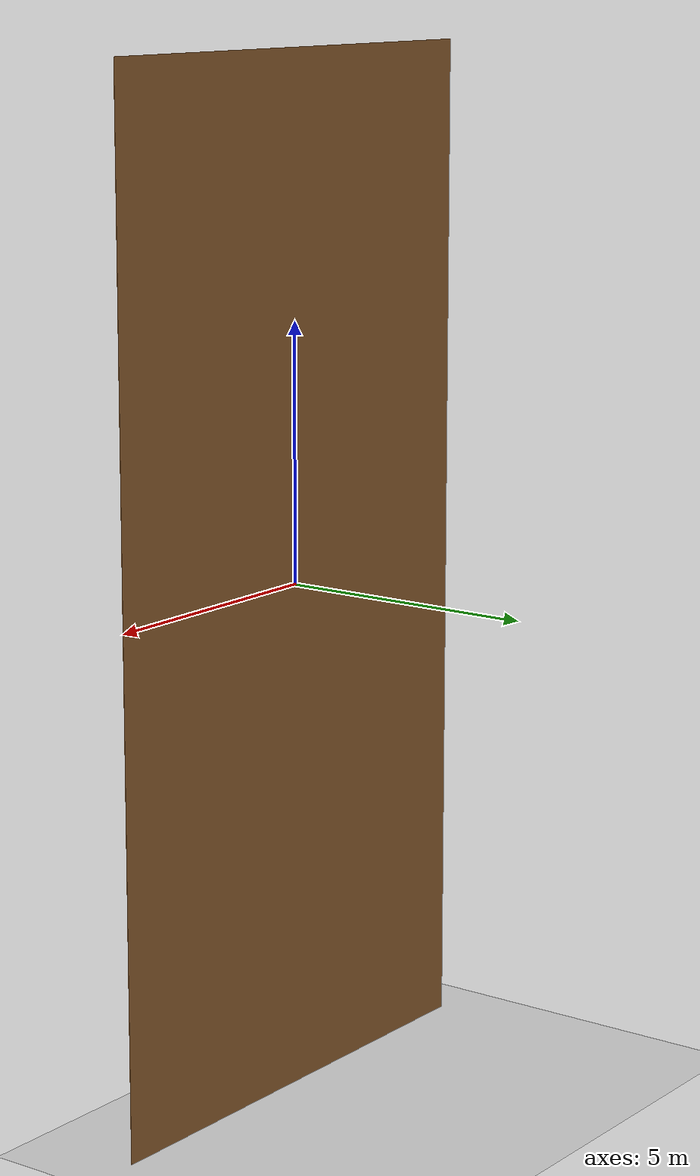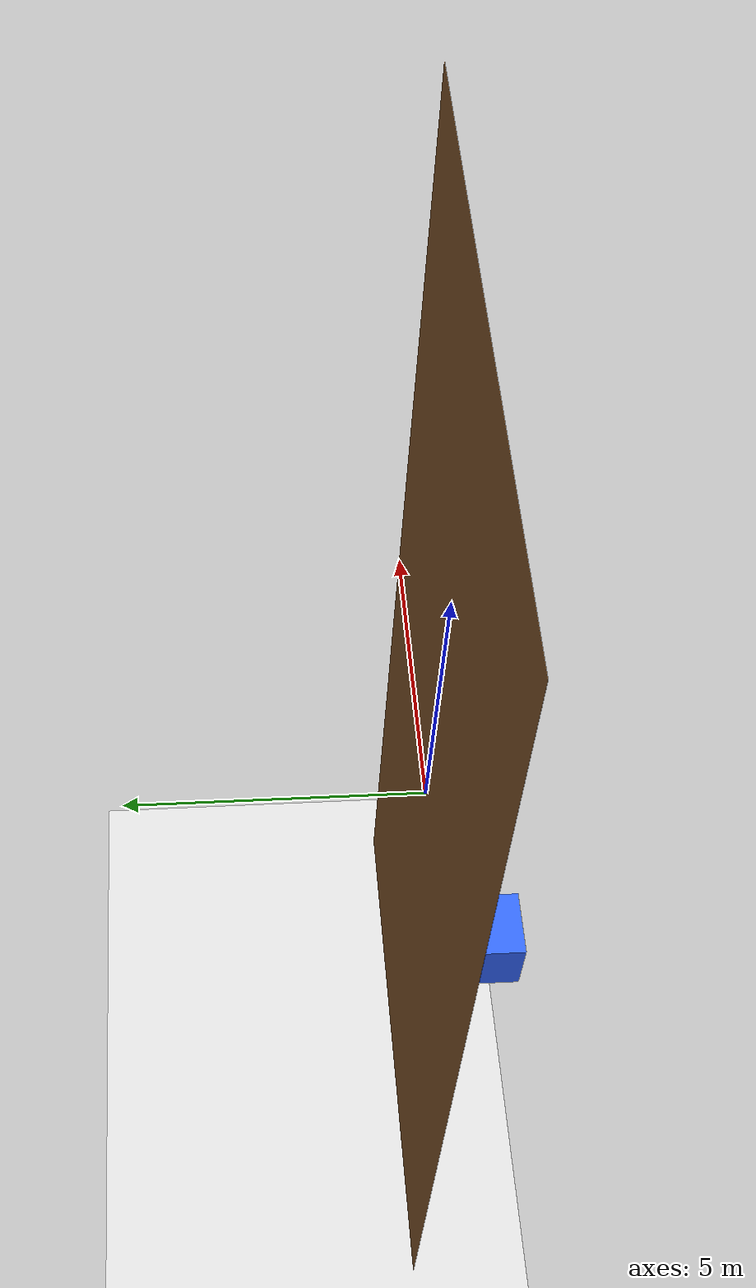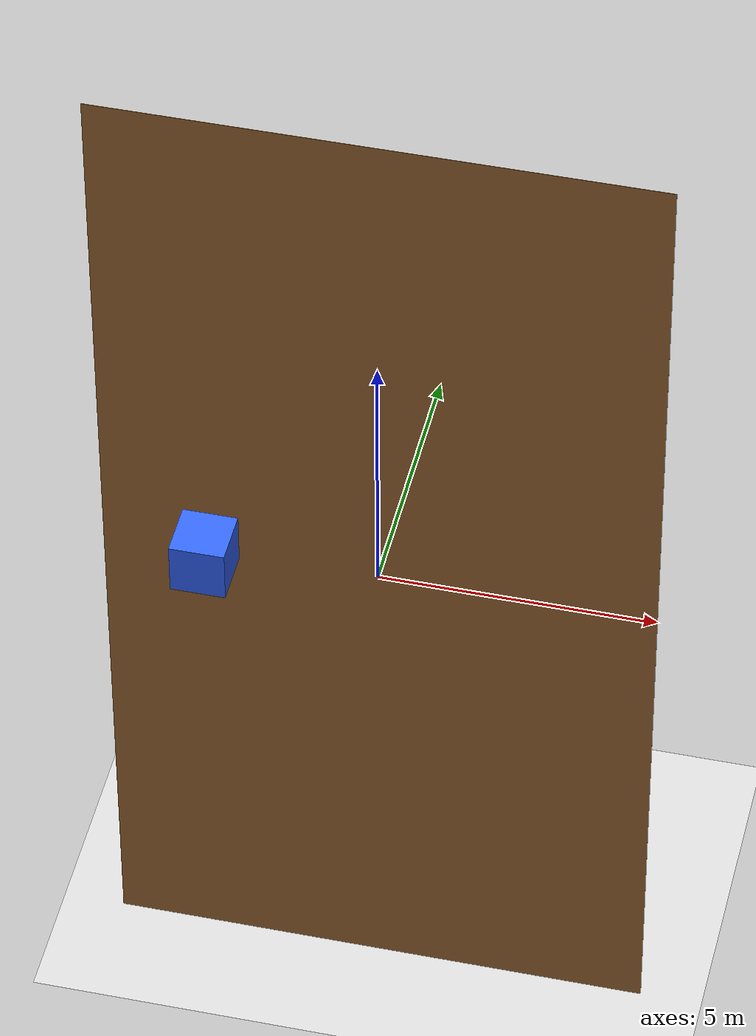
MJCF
<mujoco>
  <option gravity="0 0 -9.81"/>
  <worldbody>
    <light diffuse="0.6 0.6 0.6" pos="0 0 5" dir="0 0 -1"/>
    <body name="ground" pos="0 0 -10">
      <geom type="plane" size="50 50 0.1" rgba="0.85 0.85 0.85 1" friction="1 1 1"/>
    </body>
    <body name="ramp" pos="0 0 0">
      <geom type="plane" size="5 10 0.1" quat="0.707 0.707 0 0" rgba="0.6 0.4 0.2 1" friction="0.6 0.6 0.6"/>
    </body>
    <body name="block" pos="-3 -0.6 0.5">
      <geom type="box" size="0.5 0.5 0.5" mass="2" rgba="0.2 0.4 1 1"/>
      <joint type="free"/>
    </body>
  </worldbody>
</mujoco>
